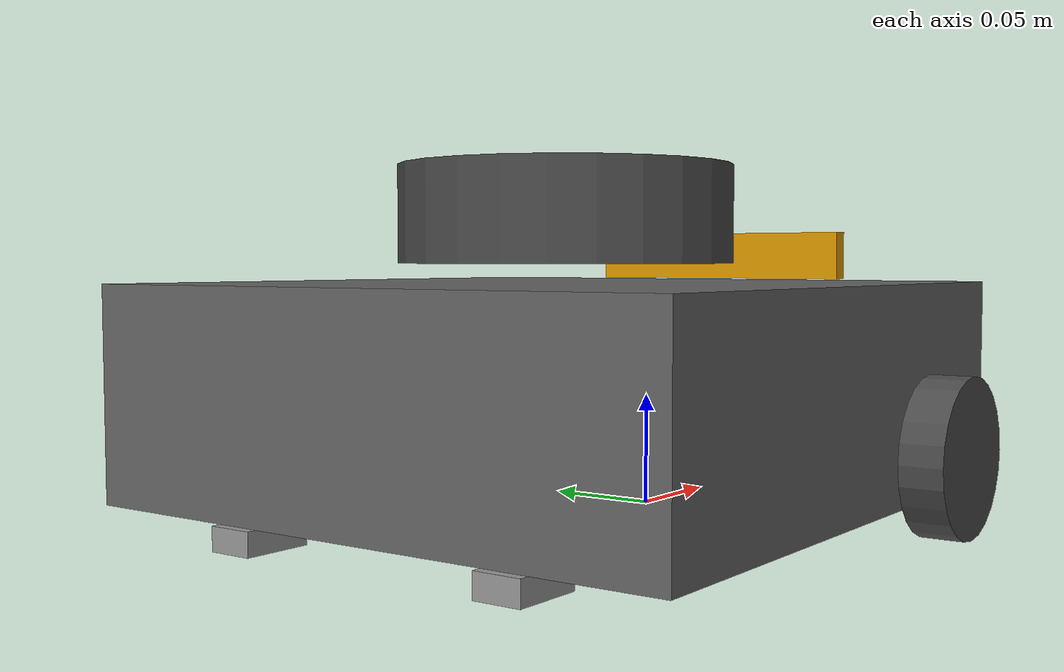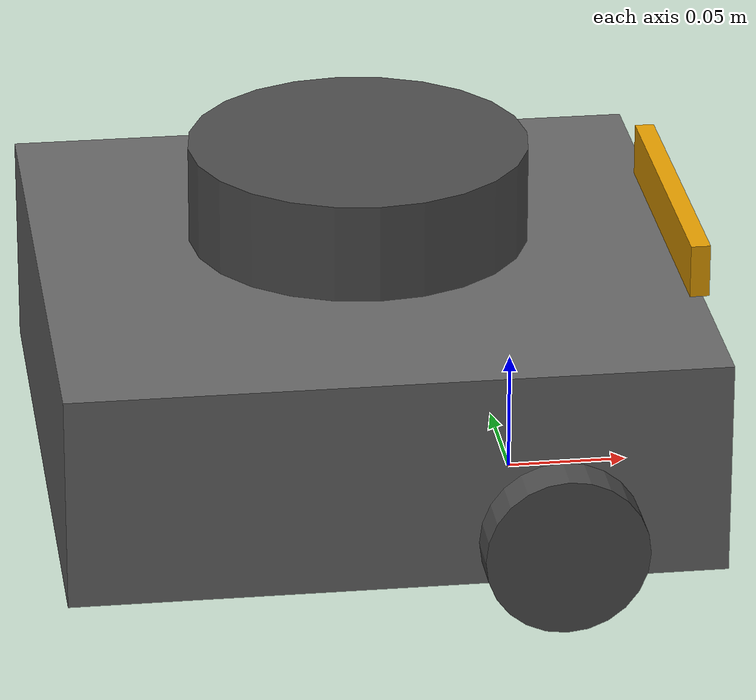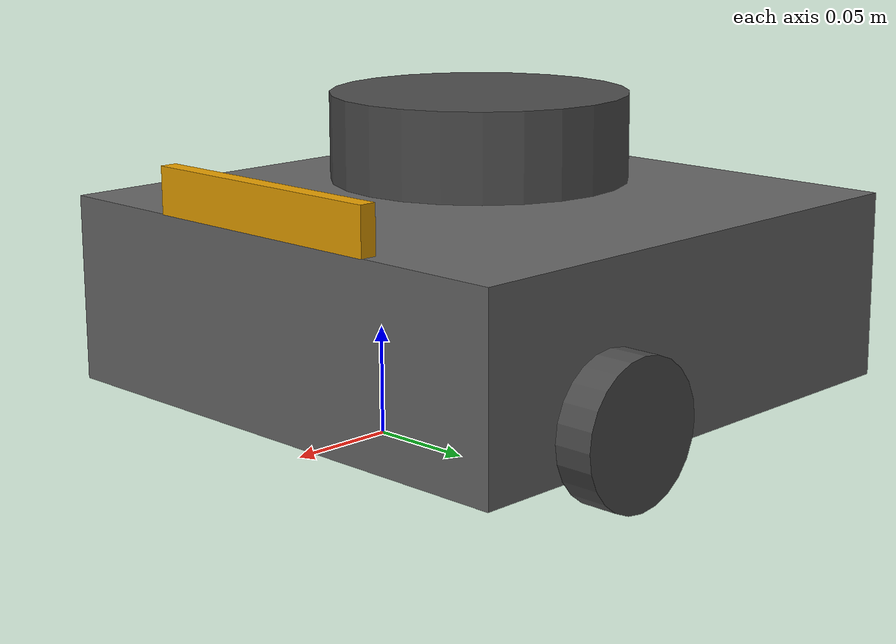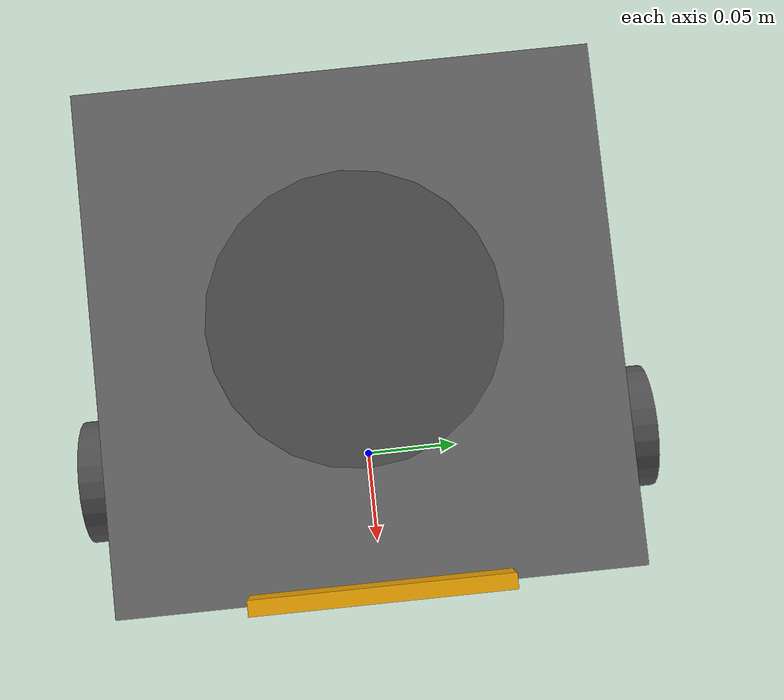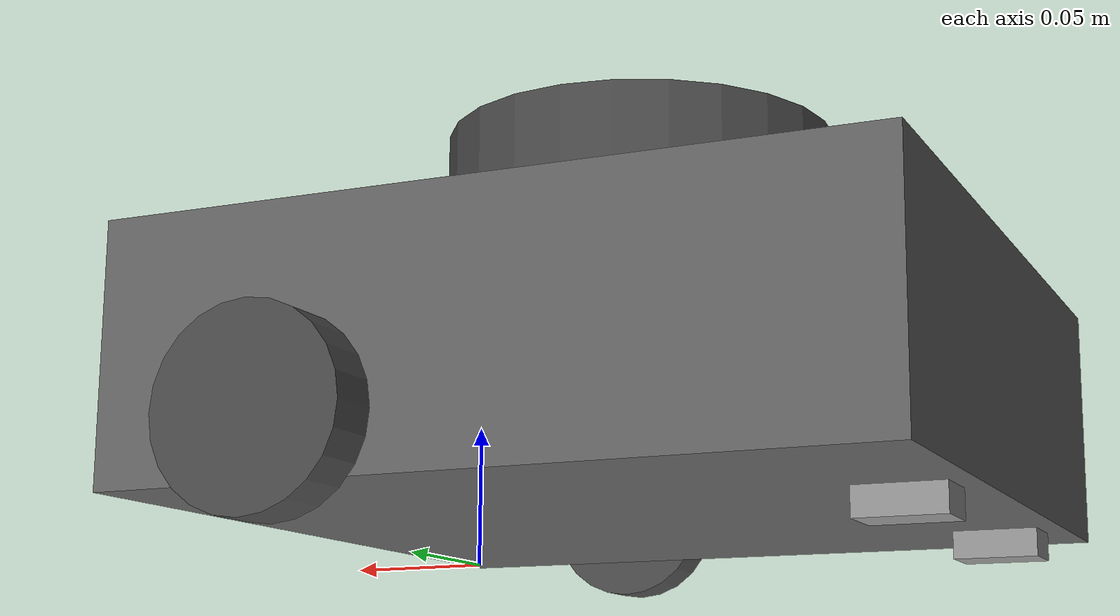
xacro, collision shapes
<?xml version="1.0" ?>
<robot name="terrapin" xmlns:xacro="http://ros.org/wiki/xacro">

  <!-- Include Files -->
  <xacro:include filename="$(find terrapin_description)/urdf/terrapin.properties.xacro"/>
  <xacro:include filename="$(find terrapin_description)/urdf/terrapin.materials.xacro"/>
  <xacro:include filename="$(find terrapin_description)/urdf/terrapin.gazebo.xacro"/>
  <xacro:include filename="$(find terrapin_description)/urdf/terrapin.macros.xacro"/>

  <link name="base_footprint"/>

  <joint name="base_joint" type="fixed">
    <parent link="base_footprint"/>
    <child link="base_link" />
    <origin xyz="0 0 0.010" rpy="0 0 0"/>
  </joint>

  <!-- Base Link -->

  <link name="base_link">
    <xacro:gz_grey_material name="base_link"/>
    <visual>
      <origin xyz="-0.064 0 0.0" rpy="0 0 0"/>
      <geometry>
        <mesh filename="package://terrapin_description/meshes/bases/waffle_base.stl" scale="0.001 0.001 0.001"/>
      </geometry>
      <material name="light_black"/>
    </visual>
    <collision>
      <origin xyz="-0.064 0 0.048" rpy="0 0 0"/>
      <geometry>
        <box size="0.265 0.265 0.089"/>
      </geometry>
    </collision>
    <inertial>
      <origin xyz="-0.064 0 0" rpy="0 0 0"/>
      <mass value="1"/>
      <inertia ixx="0.01" ixy="0.0" ixz="0.0"
               iyy="0.01" iyz="0.0"
               izz="0.01" />
    </inertial>
  </link>

  <!-- Wheels -->

  <joint name="wheel_left_joint" type="continuous">
    <parent link="base_link"/>
    <child link="wheel_left_link"/>
    <origin xyz="0.0 0.144 0.023" rpy="${-M_PI*0.5} 0 0"/>
    <axis xyz="0 0 1"/>
  </joint>

  <link name="wheel_left_link">
    <visual>
      <origin xyz="0 0 0" rpy="${M_PI*0.5} 0 0"/>
      <geometry>
        <mesh filename="package://terrapin_description/meshes/wheels/left_tire.stl" scale="0.001 0.001 0.001"/>
      </geometry>
      <material name="dark"/>
    </visual>
    <collision>
      <origin rpy="0 0 0" xyz="0 0 0"/>
      <geometry>
        <cylinder length="0.018" radius="0.033"/>
      </geometry>
    </collision>
    <inertial>
      <origin xyz="0 0 0" />
      <mass value="0.01" />
      <inertia ixx="0.001" ixy="0.0" ixz="0.0"
               iyy="0.001" iyz="0.0"
               izz="0.001" />
    </inertial>
  </link>

  <joint name="wheel_right_joint" type="continuous">
    <parent link="base_link"/>
    <child link="wheel_right_link"/>
    <origin xyz="0.0 -0.144 0.023" rpy="${-M_PI*0.5} 0 0"/>
    <axis xyz="0 0 1"/>
  </joint>

  <link name="wheel_right_link">
    <visual>
      <origin xyz="0 0 0" rpy="${M_PI*0.5} 0 0"/>
      <geometry>
        <mesh filename="package://terrapin_description/meshes/wheels/right_tire.stl" scale="0.001 0.001 0.001"/>
      </geometry>
      <material name="dark"/>
    </visual>
    <collision>
      <origin rpy="0 0 0" xyz="0 0 0"/>
      <geometry>
        <cylinder length="0.018" radius="0.033"/>
      </geometry>
    </collision>
    <inertial>
      <origin xyz="0 0 0" />
      <mass value="0.01" />
      <inertia ixx="0.001" ixy="0.0" ixz="0.0"
               iyy="0.001" iyz="0.0"
               izz="0.001" />
    </inertial>
  </link>

  <!-- Casters -->

  <joint name="caster_back_right_joint" type="fixed">
    <parent link="base_link"/>
    <child link="caster_back_right_link"/>
    <origin xyz="-0.177 -0.064 -0.004" rpy="${-M_PI*0.5} 0 0"/>
  </joint>

  <link name="caster_back_right_link">
    <collision>
      <origin rpy="0 0 0" xyz="0 0 0"/>
      <geometry>
        <box size="0.030 0.010 0.020"/>
      </geometry>
    </collision>

    <inertial>
      <origin xyz="0 0 0" />
      <mass value="0.01" />
      <inertia ixx="0.001" ixy="0.0" ixz="0.0"
               iyy="0.001" iyz="0.0"
               izz="0.001" />
    </inertial>
  </link>

  <joint name="caster_back_left_joint" type="fixed">
    <parent link="base_link"/>
    <child link="caster_back_left_link"/>
    <origin xyz="-0.177 0.064 -0.004" rpy="${-M_PI*0.5} 0 0"/>
  </joint>

  <link name="caster_back_left_link">
    <collision>
      <origin rpy="0 0 0" xyz="0 0 0"/>
      <geometry>
        <box size="0.030 0.010 0.020"/>
      </geometry>
    </collision>

    <inertial>
      <origin xyz="0 0 0" />
      <mass value="0.01" />
      <inertia ixx="0.001" ixy="0.0" ixz="0.0"
               iyy="0.001" iyz="0.0"
               izz="0.001" />
    </inertial>
  </link>

  <!-- IMU -->

  <joint name="imu_joint" type="fixed">
    <parent link="base_link"/>
    <child link="imu_link"/>
    <origin xyz="0.0 0 0.068" rpy="0 0 0"/>
  </joint>

  <link name="imu_link"/>

  <joint name="scan_joint" type="fixed">
    <parent link="base_link"/>
    <child link="base_scan"/>
    <origin xyz="-0.064 0 0.121" rpy="0 0 0"/>
  </joint>

  <!-- Base Scan -->

  <link name="base_scan">
    <visual>
      <origin xyz="0 0 0.0" rpy="0 0 0"/>
      <geometry>
        <mesh filename="package://terrapin_description/meshes/sensors/lds.stl" scale="0.001 0.001 0.001"/>
      </geometry>
      <material name="dark"/>
    </visual>
    <collision>
      <origin rpy="0 0 0" xyz="0 0 0"/>
      <geometry>
        <cylinder length="0.0408" radius="0.070"/>
      </geometry>
    </collision>
    <inertial>
      <mass value="0.01" />
      <origin xyz="0 0 0" />
      <inertia ixx="0.001" ixy="0.0" ixz="0.0"
               iyy="0.001" iyz="0.0"
               izz="0.001" />
    </inertial>
  </link>

  <!-- Camera -->

  <joint name="camera_joint" type="fixed">
    <origin xyz="0.064 -0.065 0.094" rpy="0 0 0"/>
    <parent link="base_link"/>
    <child link="camera_link"/>
  </joint>

  <link name="camera_link">
    <visual>
     <origin xyz="0 0 0" rpy="${M_PI*0.5} 0 ${M_PI*0.5}"/>
      <geometry>
       <mesh filename="package://terrapin_description/meshes/sensors/r200.dae" />
      </geometry>
    </visual>
    <collision>
      <origin xyz="0.003 0.065 0.010" rpy="0 0 0"/>
      <geometry>
        <box size="0.008 0.130 0.022"/>
      </geometry>
    </collision>
    <!-- This inertial field needs doesn't contain reliable data!! -->
    <inertial>
      <mass value="0.564" />
      <origin xyz="0 0 0" />
      <inertia ixx="0.003881243" ixy="0.0" ixz="0.0"
               iyy="0.000498940" iyz="0.0"
               izz="0.003879257" />
    </inertial>
  </link>

  <joint name="camera_rgb_joint" type="fixed">
    <origin xyz="${r200_cam_rgb_px} ${r200_cam_rgb_py} ${r200_cam_rgb_pz}" rpy="0 0 0"/>
    <parent link="camera_link"/>
    <child link="camera_rgb_frame"/>
  </joint>
  <link name="camera_rgb_frame"/>

  <joint name="camera_rgb_optical_joint" type="fixed">
    <origin xyz="0 0 0" rpy="${-M_PI/2} 0 ${-M_PI/2}"/>
    <parent link="camera_rgb_frame"/>
    <child link="camera_rgb_optical_frame"/>
  </joint>
  <link name="camera_rgb_optical_frame"/>

  <joint name="camera_depth_joint" type="fixed">
    <origin xyz="${r200_cam_rgb_px} ${r200_cam_rgb_py + r200_cam_depth_offset} ${r200_cam_rgb_pz}" rpy="0 0 0"/>
    <parent link="camera_link"/>
    <child link="camera_depth_frame"/>
  </joint>
  <link name="camera_depth_frame"/>

  <joint name="camera_depth_optical_joint" type="fixed">
    <origin xyz="0 0 0" rpy="${-M_PI/2} 0 ${-M_PI/2}"/>
    <parent link="camera_depth_frame"/>
    <child link="camera_depth_optical_frame"/>
  </joint>
  <link name="camera_depth_optical_frame"/>

</robot>

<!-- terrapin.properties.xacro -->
<robot name="terrapin_properties" xmlns:xacro="http://ros.org/wiki/xacro">

  <!--
      Command line args
  -->
  <xacro:arg name="laser_visual"  default="false"/>
  <xacro:arg name="camera_visual" default="false"/>
  <xacro:arg name="imu_visual"    default="false"/>

  <xacro:arg name="r200_cam_rgb_px" default="0.005"/>
  <xacro:arg name="r200_cam_rgb_py" default="0.018"/>
  <xacro:arg name="r200_cam_rgb_pz" default="0.013"/>
  <xacro:arg name="r200_cam_depth_offset" default="0.01"/>

  <!--
      Properties
  -->

  <!-- Global Properties -->
  <xacro:property name="M_PI" value="3.1415926535897931" />

  <!-- Gazebo Properties -->
  <xacro:property name="laser_visual"  value="$(arg laser_visual)"/>
  <xacro:property name="camera_visual" value="$(arg camera_visual)"/>
  <xacro:property name="imu_visual"    value="$(arg imu_visual)"/>

  <xacro:property name="r200_cam_rgb_px" value="$(arg r200_cam_rgb_px)"/>
  <xacro:property name="r200_cam_rgb_py" value="$(arg r200_cam_rgb_py)"/>
  <xacro:property name="r200_cam_rgb_pz" value="$(arg r200_cam_rgb_pz)"/>
  <xacro:property name="r200_cam_depth_offset" value="$(arg r200_cam_depth_offset)"/>

</robot>

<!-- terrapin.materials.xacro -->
<robot name="terrapin_materials" xmlns:xacro="http://ros.org/wiki/xacro">

  <material name="black">
      <color rgba="0.0 0.0 0.0 1.0"/>
  </material>

  <material name="dark">
    <color rgba="0.3 0.3 0.3 1.0"/>
  </material>
  <material name="light_black">
    <color rgba="0.4 0.4 0.4 1.0"/>
  </material>

  <material name="blue">
    <color rgba="0.0 0.0 0.8 1.0"/>
  </material>

  <material name="green">
    <color rgba="0.0 0.8 0.0 1.0"/>
  </material>

  <material name="grey">
    <color rgba="0.5 0.5 0.5 1.0"/>
  </material>

  <material name="orange">
    <color rgba="${255/255} ${108/255} ${10/255} 1.0"/>
  </material>

  <material name="brown">
    <color rgba="${222/255} ${207/255} ${195/255} 1.0"/>
  </material>

  <material name="red">
    <color rgba="0.8 0.0 0.0 1.0"/>
  </material>

  <material name="white">
    <color rgba="1.0 1.0 1.0 1.0"/>
  </material>

  <!-- Gazebo Materials -->
  <xacro:macro name="gz_black_material" params="name">
    <gazebo reference="${name}">
      <material>Gazebo/FlatBlack</material>
    </gazebo>
  </xacro:macro>

  <xacro:macro name="gz_grey_material" params="name">
    <gazebo reference="${name}">
      <material>Gazebo/Grey</material>
    </gazebo>
  </xacro:macro>

  <xacro:macro name="gz_white_material" params="name">
    <gazebo reference="${name}">
      <material>Gazebo/White</material>
    </gazebo>
  </xacro:macro>

  <xacro:macro name="gz_blue_material" params="name">
    <gazebo reference="${name}">
      <material>Gazebo/Blue</material>
    </gazebo>
  </xacro:macro>

  <xacro:macro name="gz_red_material" params="name">
    <gazebo reference="${name}">
      <material>Gazebo/Red</material>
    </gazebo>
  </xacro:macro>

</robot>
